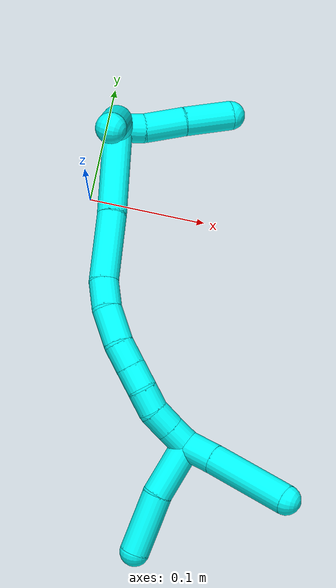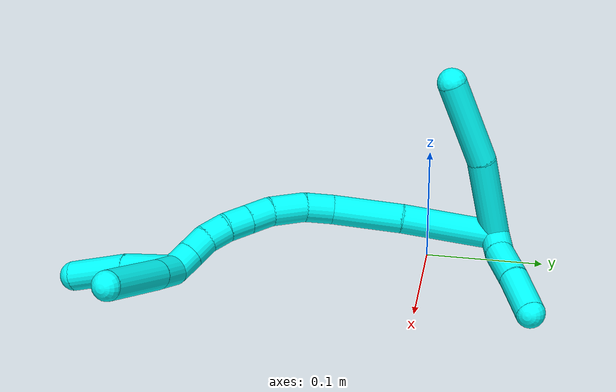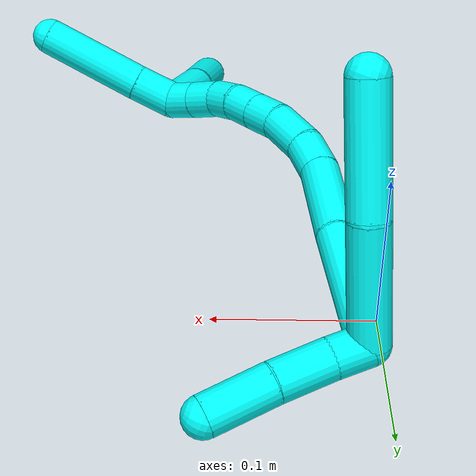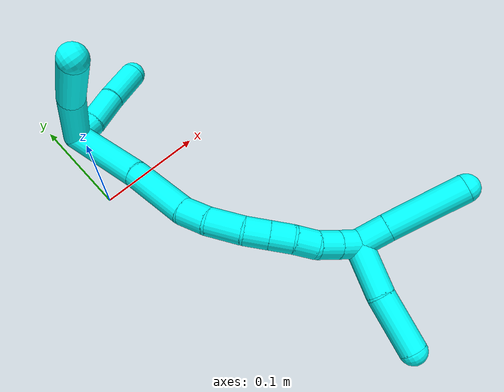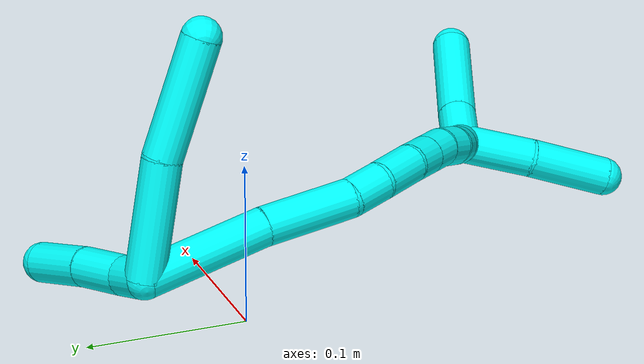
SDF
<sdf version="1.7">
 <world name="default">
  <model name="3">
   <static>0</static>
   <link name="3">
    <collision name="collision-cylinder-e_1_2_8">
     <pose>-0.027451 -0.021248 0.013483 1.00536 -0.82881 -0.474568</pose>
     <geometry><cylinder><radius>0.0125</radius><length>0.07448</length></cylinder></geometry>
     <surface>
      <friction><ode><mu>1.16</mu><mu2>1.16</mu2><slip1>0</slip1><slip2>0</slip2></ode></friction>
      <contact><ode><kp>1e+06</kp><kd>1</kd><max_vel>0</max_vel><min_depth>0.001</min_depth></ode></contact>
     </surface>
    </collision>
    <visual name="visual-cylinder-e_1_2_8">
     <pose>-0.027451 -0.021248 0.013483 1.00536 -0.82881 -0.474568</pose>
     <geometry><cylinder><radius>0.0125</radius><length>0.07448</length></cylinder></geometry>
     <material><ambient>0.003922 1 0.996078 1</ambient></material>
    </visual>
    <collision name="collision-cylinder-e_2_8_6">
     <pose>-0.078257 -0.068741 0.040805 1.08555 -0.666884 -0.411946</pose>
     <geometry><cylinder><radius>0.0125</radius><length>0.07552</length></cylinder></geometry>
     <surface>
      <friction><ode><mu>1.16</mu><mu2>1.16</mu2><slip1>0</slip1><slip2>0</slip2></ode></friction>
      <contact><ode><kp>1e+06</kp><kd>1</kd><max_vel>0</max_vel><min_depth>0.001</min_depth></ode></contact>
     </surface>
    </collision>
    <visual name="visual-cylinder-e_2_8_6">
     <pose>-0.078257 -0.068741 0.040805 1.08555 -0.666884 -0.411946</pose>
     <geometry><cylinder><radius>0.0125</radius><length>0.07552</length></cylinder></geometry>
     <material><ambient>0.003922 1 0.996078 1</ambient></material>
    </visual>
    <collision name="collision-cylinder-e_1_2_9">
     <pose>0.002577 0.006701 0.008575 -0.663346 0.232501 -0.080392</pose>
     <geometry><cylinder><radius>0.0125</radius><length>0.022368</length></cylinder></geometry>
     <surface>
      <friction><ode><mu>1.16</mu><mu2>1.16</mu2><slip1>0</slip1><slip2>0</slip2></ode></friction>
      <contact><ode><kp>1e+06</kp><kd>1</kd><max_vel>0</max_vel><min_depth>0.001</min_depth></ode></contact>
     </surface>
    </collision>
    <visual name="visual-cylinder-e_1_2_9">
     <pose>0.002577 0.006701 0.008575 -0.663346 0.232501 -0.080392</pose>
     <geometry><cylinder><radius>0.0125</radius><length>0.022368</length></cylinder></geometry>
     <material><ambient>0.003922 1 0.996078 1</ambient></material>
    </visual>
    <collision name="collision-cylinder-e_2_9_10">
     <pose>0.006148 0.025506 0.030155 -0.749518 0.05591 -0.021997</pose>
     <geometry><cylinder><radius>0.0125</radius><length>0.035585</length></cylinder></geometry>
     <surface>
      <friction><ode><mu>1.16</mu><mu2>1.16</mu2><slip1>0</slip1><slip2>0</slip2></ode></friction>
      <contact><ode><kp>1e+06</kp><kd>1</kd><max_vel>0</max_vel><min_depth>0.001</min_depth></ode></contact>
     </surface>
    </collision>
    <visual name="visual-cylinder-e_2_9_10">
     <pose>0.006148 0.025506 0.030155 -0.749518 0.05591 -0.021997</pose>
     <geometry><cylinder><radius>0.0125</radius><length>0.035585</length></cylinder></geometry>
     <material><ambient>0.003922 1 0.996078 1</ambient></material>
    </visual>
    <collision name="collision-cylinder-e_3_10_5">
     <pose>0.010002 0.052302 0.05792 -0.783101 0.136435 -0.056402</pose>
     <geometry><cylinder><radius>0.0125</radius><length>0.042046</length></cylinder></geometry>
     <surface>
      <friction><ode><mu>1.16</mu><mu2>1.16</mu2><slip1>0</slip1><slip2>0</slip2></ode></friction>
      <contact><ode><kp>1e+06</kp><kd>1</kd><max_vel>0</max_vel><min_depth>0.001</min_depth></ode></contact>
     </surface>
    </collision>
    <visual name="visual-cylinder-e_3_10_5">
     <pose>0.010002 0.052302 0.05792 -0.783101 0.136435 -0.056402</pose>
     <geometry><cylinder><radius>0.0125</radius><length>0.042046</length></cylinder></geometry>
     <material><ambient>0.003922 1 0.996078 1</ambient></material>
    </visual>
    <collision name="collision-cylinder-e_1_2_11">
     <pose>0.01365 -0.03525 0.01575 1.1506 0.339827 0.221603</pose>
     <geometry><cylinder><radius>0.0125</radius><length>0.081901</length></cylinder></geometry>
     <surface>
      <friction><ode><mu>1.16</mu><mu2>1.16</mu2><slip1>0</slip1><slip2>0</slip2></ode></friction>
      <contact><ode><kp>1e+06</kp><kd>1</kd><max_vel>0</max_vel><min_depth>0.001</min_depth></ode></contact>
     </surface>
    </collision>
    <visual name="visual-cylinder-e_1_2_11">
     <pose>0.01365 -0.03525 0.01575 1.1506 0.339827 0.221603</pose>
     <geometry><cylinder><radius>0.0125</radius><length>0.081901</length></cylinder></geometry>
     <material><ambient>0.003922 1 0.996078 1</ambient></material>
    </visual>
    <collision name="collision-cylinder-e_2_11_12">
     <pose>0.039197 -0.096101 0.041088 1.21245 0.410497 0.286689</pose>
     <geometry><cylinder><radius>0.0125</radius><length>0.059629</length></cylinder></geometry>
     <surface>
      <friction><ode><mu>1.16</mu><mu2>1.16</mu2><slip1>0</slip1><slip2>0</slip2></ode></friction>
      <contact><ode><kp>1e+06</kp><kd>1</kd><max_vel>0</max_vel><min_depth>0.001</min_depth></ode></contact>
     </surface>
    </collision>
    <visual name="visual-cylinder-e_2_11_12">
     <pose>0.039197 -0.096101 0.041088 1.21245 0.410497 0.286689</pose>
     <geometry><cylinder><radius>0.0125</radius><length>0.059629</length></cylinder></geometry>
     <material><ambient>0.003922 1 0.996078 1</ambient></material>
    </visual>
    <collision name="collision-cylinder-e_3_12_13">
     <pose>0.055415 -0.131274 0.057324 0.963729 0.35494 0.187054</pose>
     <geometry><cylinder><radius>0.0125</radius><length>0.024858</length></cylinder></geometry>
     <surface>
      <friction><ode><mu>1.16</mu><mu2>1.16</mu2><slip1>0</slip1><slip2>0</slip2></ode></friction>
      <contact><ode><kp>1e+06</kp><kd>1</kd><max_vel>0</max_vel><min_depth>0.001</min_depth></ode></contact>
     </surface>
    </collision>
    <visual name="visual-cylinder-e_3_12_13">
     <pose>0.055415 -0.131274 0.057324 0.963729 0.35494 0.187054</pose>
     <geometry><cylinder><radius>0.0125</radius><length>0.024858</length></cylinder></geometry>
     <material><ambient>0.003922 1 0.996078 1</ambient></material>
    </visual>
    <collision name="collision-cylinder-e_4_13_14">
     <pose>0.066737 -0.150214 0.074199 0.741634 0.467593 0.184662</pose>
     <geometry><cylinder><radius>0.0125</radius><length>0.031072</length></cylinder></geometry>
     <surface>
      <friction><ode><mu>1.16</mu><mu2>1.16</mu2><slip1>0</slip1><slip2>0</slip2></ode></friction>
      <contact><ode><kp>1e+06</kp><kd>1</kd><max_vel>0</max_vel><min_depth>0.001</min_depth></ode></contact>
     </surface>
    </collision>
    <visual name="visual-cylinder-e_4_13_14">
     <pose>0.066737 -0.150214 0.074199 0.741634 0.467593 0.184662</pose>
     <geometry><cylinder><radius>0.0125</radius><length>0.031072</length></cylinder></geometry>
     <material><ambient>0.003922 1 0.996078 1</ambient></material>
    </visual>
    <collision name="collision-cylinder-e_5_14_15">
     <pose>0.079651 -0.164135 0.092177 0.530995 0.581647 0.162417</pose>
     <geometry><cylinder><radius>0.0125</radius><length>0.021519</length></cylinder></geometry>
     <surface>
      <friction><ode><mu>1.16</mu><mu2>1.16</mu2><slip1>0</slip1><slip2>0</slip2></ode></friction>
      <contact><ode><kp>1e+06</kp><kd>1</kd><max_vel>0</max_vel><min_depth>0.001</min_depth></ode></contact>
     </surface>
    </collision>
    <visual name="visual-cylinder-e_5_14_15">
     <pose>0.079651 -0.164135 0.092177 0.530995 0.581647 0.162417</pose>
     <geometry><cylinder><radius>0.0125</radius><length>0.021519</length></cylinder></geometry>
     <material><ambient>0.003922 1 0.996078 1</ambient></material>
    </visual>
    <collision name="collision-cylinder-e_6_15_16">
     <pose>0.091221 -0.173046 0.107349 0.531155 0.581659 0.162471</pose>
     <geometry><cylinder><radius>0.0125</radius><length>0.020598</length></cylinder></geometry>
     <surface>
      <friction><ode><mu>1.16</mu><mu2>1.16</mu2><slip1>0</slip1><slip2>0</slip2></ode></friction>
      <contact><ode><kp>1e+06</kp><kd>1</kd><max_vel>0</max_vel><min_depth>0.001</min_depth></ode></contact>
     </surface>
    </collision>
    <visual name="visual-cylinder-e_6_15_16">
     <pose>0.091221 -0.173046 0.107349 0.531155 0.581659 0.162471</pose>
     <geometry><cylinder><radius>0.0125</radius><length>0.020598</length></cylinder></geometry>
     <material><ambient>0.003922 1 0.996078 1</ambient></material>
    </visual>
    <collision name="collision-cylinder-e_7_16_17">
     <pose>0.103774 -0.180617 0.121296 0.457243 0.758625 0.184979</pose>
     <geometry><cylinder><radius>0.0125</radius><length>0.020045</length></cylinder></geometry>
     <surface>
      <friction><ode><mu>1.16</mu><mu2>1.16</mu2><slip1>0</slip1><slip2>0</slip2></ode></friction>
      <contact><ode><kp>1e+06</kp><kd>1</kd><max_vel>0</max_vel><min_depth>0.001</min_depth></ode></contact>
     </surface>
    </collision>
    <visual name="visual-cylinder-e_7_16_17">
     <pose>0.103774 -0.180617 0.121296 0.457243 0.758625 0.184979</pose>
     <geometry><cylinder><radius>0.0125</radius><length>0.020045</length></cylinder></geometry>
     <material><ambient>0.003922 1 0.996078 1</ambient></material>
    </visual>
    <collision name="collision-cylinder-e_8_17_18">
     <pose>0.117413 -0.184303 0.135401 0.062529 0.726235 0.023765</pose>
     <geometry><cylinder><radius>0.0125</radius><length>0.020311</length></cylinder></geometry>
     <surface>
      <friction><ode><mu>1.16</mu><mu2>1.16</mu2><slip1>0</slip1><slip2>0</slip2></ode></friction>
      <contact><ode><kp>1e+06</kp><kd>1</kd><max_vel>0</max_vel><min_depth>0.001</min_depth></ode></contact>
     </surface>
    </collision>
    <visual name="visual-cylinder-e_8_17_18">
     <pose>0.117413 -0.184303 0.135401 0.062529 0.726235 0.023765</pose>
     <geometry><cylinder><radius>0.0125</radius><length>0.020311</length></cylinder></geometry>
     <material><ambient>0.003922 1 0.996078 1</ambient></material>
    </visual>
    <collision name="collision-cylinder-e_9_18_1">
     <pose>0.130444 -0.185182 0.150788 0.05181 0.677201 0.018249</pose>
     <geometry><cylinder><radius>0.0125</radius><length>0.020066</length></cylinder></geometry>
     <surface>
      <friction><ode><mu>1.16</mu><mu2>1.16</mu2><slip1>0</slip1><slip2>0</slip2></ode></friction>
      <contact><ode><kp>1e+06</kp><kd>1</kd><max_vel>0</max_vel><min_depth>0.001</min_depth></ode></contact>
     </surface>
    </collision>
    <visual name="visual-cylinder-e_9_18_1">
     <pose>0.130444 -0.185182 0.150788 0.05181 0.677201 0.018249</pose>
     <geometry><cylinder><radius>0.0125</radius><length>0.020066</length></cylinder></geometry>
     <material><ambient>0.003922 1 0.996078 1</ambient></material>
    </visual>
    <collision name="collision-cylinder-e_1_1_19">
     <pose>0.150978 -0.203824 0.153953 1.82012 0.648019 0.815692</pose>
     <geometry><cylinder><radius>0.0125</radius><length>0.047207</length></cylinder></geometry>
     <surface>
      <friction><ode><mu>1.16</mu><mu2>1.16</mu2><slip1>0</slip1><slip2>0</slip2></ode></friction>
      <contact><ode><kp>1e+06</kp><kd>1</kd><max_vel>0</max_vel><min_depth>0.001</min_depth></ode></contact>
     </surface>
    </collision>
    <visual name="visual-cylinder-e_1_1_19">
     <pose>0.150978 -0.203824 0.153953 1.82012 0.648019 0.815692</pose>
     <geometry><cylinder><radius>0.0125</radius><length>0.047207</length></cylinder></geometry>
     <material><ambient>0.003922 1 0.996078 1</ambient></material>
    </visual>
    <collision name="collision-cylinder-e_2_19_4">
     <pose>0.183946 -0.240573 0.14741 1.67307 0.788387 0.863663</pose>
     <geometry><cylinder><radius>0.0125</radius><length>0.052793</length></cylinder></geometry>
     <surface>
      <friction><ode><mu>1.16</mu><mu2>1.16</mu2><slip1>0</slip1><slip2>0</slip2></ode></friction>
      <contact><ode><kp>1e+06</kp><kd>1</kd><max_vel>0</max_vel><min_depth>0.001</min_depth></ode></contact>
     </surface>
    </collision>
    <visual name="visual-cylinder-e_2_19_4">
     <pose>0.183946 -0.240573 0.14741 1.67307 0.788387 0.863663</pose>
     <geometry><cylinder><radius>0.0125</radius><length>0.052793</length></cylinder></geometry>
     <material><ambient>0.003922 1 0.996078 1</ambient></material>
    </visual>
    <collision name="collision-cylinder-e_1_1_20">
     <pose>0.136662 -0.187318 0.172568 0.123294 -0.004856 -0.0003</pose>
     <geometry><cylinder><radius>0.0125</radius><length>0.028157</length></cylinder></geometry>
     <surface>
      <friction><ode><mu>1.16</mu><mu2>1.16</mu2><slip1>0</slip1><slip2>0</slip2></ode></friction>
      <contact><ode><kp>1e+06</kp><kd>1</kd><max_vel>0</max_vel><min_depth>0.001</min_depth></ode></contact>
     </surface>
    </collision>
    <visual name="visual-cylinder-e_1_1_20">
     <pose>0.136662 -0.187318 0.172568 0.123294 -0.004856 -0.0003</pose>
     <geometry><cylinder><radius>0.0125</radius><length>0.028157</length></cylinder></geometry>
     <material><ambient>0.003922 1 0.996078 1</ambient></material>
    </visual>
    <collision name="collision-cylinder-e_2_20_3">
     <pose>0.136566 -0.194843 0.22199 0.161978 -0.000768 -6.2e-05</pose>
     <geometry><cylinder><radius>0.0125</radius><length>0.071843</length></cylinder></geometry>
     <surface>
      <friction><ode><mu>1.16</mu><mu2>1.16</mu2><slip1>0</slip1><slip2>0</slip2></ode></friction>
      <contact><ode><kp>1e+06</kp><kd>1</kd><max_vel>0</max_vel><min_depth>0.001</min_depth></ode></contact>
     </surface>
    </collision>
    <visual name="visual-cylinder-e_2_20_3">
     <pose>0.136566 -0.194843 0.22199 0.161978 -0.000768 -6.2e-05</pose>
     <geometry><cylinder><radius>0.0125</radius><length>0.071843</length></cylinder></geometry>
     <material><ambient>0.003922 1 0.996078 1</ambient></material>
    </visual>
    <collision name="collision-sphere-3">
     <pose>0.136539 -0.200636 0.257442 0 -0 0</pose>
     <geometry><sphere><radius>0.0125</radius></sphere></geometry>
     <surface>
      <friction><ode><mu>1.16</mu><mu2>1.16</mu2><slip1>0</slip1><slip2>0</slip2></ode></friction>
      <contact><ode><kp>1e+06</kp><kd>1</kd><max_vel>0</max_vel><min_depth>0.001</min_depth></ode></contact>
     </surface>
    </collision>
    <visual name="visual-sphere-3">
     <pose>0.136539 -0.200636 0.257442 0 -0 0</pose>
     <geometry><sphere><radius>0.0125</radius></sphere></geometry>
     <material><ambient>0.003922 1 0.996078 1</ambient></material>
    </visual>
    <collision name="collision-sphere-20">
     <pose>0.136594 -0.18905 0.186539 0 -0 0</pose>
     <geometry><sphere><radius>0.0125</radius></sphere></geometry>
     <surface>
      <friction><ode><mu>1.16</mu><mu2>1.16</mu2><slip1>0</slip1><slip2>0</slip2></ode></friction>
      <contact><ode><kp>1e+06</kp><kd>1</kd><max_vel>0</max_vel><min_depth>0.001</min_depth></ode></contact>
     </surface>
    </collision>
    <visual name="visual-sphere-20">
     <pose>0.136594 -0.18905 0.186539 0 -0 0</pose>
     <geometry><sphere><radius>0.0125</radius></sphere></geometry>
     <material><ambient>0.003922 1 0.996078 1</ambient></material>
    </visual>
    <collision name="collision-sphere-4">
     <pose>0.202667 -0.259084 0.14551 0 -0 0</pose>
     <geometry><sphere><radius>0.0125</radius></sphere></geometry>
     <surface>
      <friction><ode><mu>1.16</mu><mu2>1.16</mu2><slip1>0</slip1><slip2>0</slip2></ode></friction>
      <contact><ode><kp>1e+06</kp><kd>1</kd><max_vel>0</max_vel><min_depth>0.001</min_depth></ode></contact>
     </surface>
    </collision>
    <visual name="visual-sphere-4">
     <pose>0.202667 -0.259084 0.14551 0 -0 0</pose>
     <geometry><sphere><radius>0.0125</radius></sphere></geometry>
     <material><ambient>0.003922 1 0.996078 1</ambient></material>
    </visual>
    <collision name="collision-sphere-5">
     <pose>0.012861 0.066996 0.072682 0 -0 0</pose>
     <geometry><sphere><radius>0.0125</radius></sphere></geometry>
     <surface>
      <friction><ode><mu>1.16</mu><mu2>1.16</mu2><slip1>0</slip1><slip2>0</slip2></ode></friction>
      <contact><ode><kp>1e+06</kp><kd>1</kd><max_vel>0</max_vel><min_depth>0.001</min_depth></ode></contact>
     </surface>
    </collision>
    <visual name="visual-sphere-5">
     <pose>0.012861 0.066996 0.072682 0 -0 0</pose>
     <geometry><sphere><radius>0.0125</radius></sphere></geometry>
     <material><ambient>0.003922 1 0.996078 1</ambient></material>
    </visual>
    <collision name="collision-sphere-10">
     <pose>0.007143 0.037609 0.043159 0 -0 0</pose>
     <geometry><sphere><radius>0.0125</radius></sphere></geometry>
     <surface>
      <friction><ode><mu>1.16</mu><mu2>1.16</mu2><slip1>0</slip1><slip2>0</slip2></ode></friction>
      <contact><ode><kp>1e+06</kp><kd>1</kd><max_vel>0</max_vel><min_depth>0.001</min_depth></ode></contact>
     </surface>
    </collision>
    <visual name="visual-sphere-10">
     <pose>0.007143 0.037609 0.043159 0 -0 0</pose>
     <geometry><sphere><radius>0.0125</radius></sphere></geometry>
     <material><ambient>0.003922 1 0.996078 1</ambient></material>
    </visual>
    <collision name="collision-sphere-6">
     <pose>-0.101613 -0.094986 0.054644 0 -0 0</pose>
     <geometry><sphere><radius>0.0125</radius></sphere></geometry>
     <surface>
      <friction><ode><mu>1.16</mu><mu2>1.16</mu2><slip1>0</slip1><slip2>0</slip2></ode></friction>
      <contact><ode><kp>1e+06</kp><kd>1</kd><max_vel>0</max_vel><min_depth>0.001</min_depth></ode></contact>
     </surface>
    </collision>
    <visual name="visual-sphere-6">
     <pose>-0.101613 -0.094986 0.054644 0 -0 0</pose>
     <geometry><sphere><radius>0.0125</radius></sphere></geometry>
     <material><ambient>0.003922 1 0.996078 1</ambient></material>
    </visual>
    <collision name="collision-sphere-9">
     <pose>0.005154 0.013403 0.017151 0 -0 0</pose>
     <geometry><sphere><radius>0.0125</radius></sphere></geometry>
     <surface>
      <friction><ode><mu>1.16</mu><mu2>1.16</mu2><slip1>0</slip1><slip2>0</slip2></ode></friction>
      <contact><ode><kp>1e+06</kp><kd>1</kd><max_vel>0</max_vel><min_depth>0.001</min_depth></ode></contact>
     </surface>
    </collision>
    <visual name="visual-sphere-9">
     <pose>0.005154 0.013403 0.017151 0 -0 0</pose>
     <geometry><sphere><radius>0.0125</radius></sphere></geometry>
     <material><ambient>0.003922 1 0.996078 1</ambient></material>
    </visual>
    <collision name="collision-sphere-2">
     <geometry><sphere><radius>0.0125</radius></sphere></geometry>
     <surface>
      <friction><ode><mu>1.16</mu><mu2>1.16</mu2><slip1>0</slip1><slip2>0</slip2></ode></friction>
      <contact><ode><kp>1e+06</kp><kd>1</kd><max_vel>0</max_vel><min_depth>0.001</min_depth></ode></contact>
     </surface>
    </collision>
    <visual name="visual-sphere-2">
     <geometry><sphere><radius>0.0125</radius></sphere></geometry>
     <material><ambient>0.003922 1 0.996078 1</ambient></material>
    </visual>
    <collision name="collision-sphere-19">
     <pose>0.165225 -0.222061 0.14931 0 -0 0</pose>
     <geometry><sphere><radius>0.0125</radius></sphere></geometry>
     <surface>
      <friction><ode><mu>1.16</mu><mu2>1.16</mu2><slip1>0</slip1><slip2>0</slip2></ode></friction>
      <contact><ode><kp>1e+06</kp><kd>1</kd><max_vel>0</max_vel><min_depth>0.001</min_depth></ode></contact>
     </surface>
    </collision>
    <visual name="visual-sphere-19">
     <pose>0.165225 -0.222061 0.14931 0 -0 0</pose>
     <geometry><sphere><radius>0.0125</radius></sphere></geometry>
     <material><ambient>0.003922 1 0.996078 1</ambient></material>
    </visual>
    <collision name="collision-sphere-8">
     <pose>-0.054901 -0.042496 0.026966 0 -0 0</pose>
     <geometry><sphere><radius>0.0125</radius></sphere></geometry>
     <surface>
      <friction><ode><mu>1.16</mu><mu2>1.16</mu2><slip1>0</slip1><slip2>0</slip2></ode></friction>
      <contact><ode><kp>1e+06</kp><kd>1</kd><max_vel>0</max_vel><min_depth>0.001</min_depth></ode></contact>
     </surface>
    </collision>
    <visual name="visual-sphere-8">
     <pose>-0.054901 -0.042496 0.026966 0 -0 0</pose>
     <geometry><sphere><radius>0.0125</radius></sphere></geometry>
     <material><ambient>0.003922 1 0.996078 1</ambient></material>
    </visual>
    <collision name="collision-sphere-11">
     <pose>0.0273 -0.0705 0.0315 0 -0 0</pose>
     <geometry><sphere><radius>0.0125</radius></sphere></geometry>
     <surface>
      <friction><ode><mu>1.16</mu><mu2>1.16</mu2><slip1>0</slip1><slip2>0</slip2></ode></friction>
      <contact><ode><kp>1e+06</kp><kd>1</kd><max_vel>0</max_vel><min_depth>0.001</min_depth></ode></contact>
     </surface>
    </collision>
    <visual name="visual-sphere-11">
     <pose>0.0273 -0.0705 0.0315 0 -0 0</pose>
     <geometry><sphere><radius>0.0125</radius></sphere></geometry>
     <material><ambient>0.003922 1 0.996078 1</ambient></material>
    </visual>
    <collision name="collision-sphere-12">
     <pose>0.051095 -0.121702 0.050676 0 -0 0</pose>
     <geometry><sphere><radius>0.0125</radius></sphere></geometry>
     <surface>
      <friction><ode><mu>1.16</mu><mu2>1.16</mu2><slip1>0</slip1><slip2>0</slip2></ode></friction>
      <contact><ode><kp>1e+06</kp><kd>1</kd><max_vel>0</max_vel><min_depth>0.001</min_depth></ode></contact>
     </surface>
    </collision>
    <visual name="visual-sphere-12">
     <pose>0.051095 -0.121702 0.050676 0 -0 0</pose>
     <geometry><sphere><radius>0.0125</radius></sphere></geometry>
     <material><ambient>0.003922 1 0.996078 1</ambient></material>
    </visual>
    <collision name="collision-sphere-13">
     <pose>0.059734 -0.140846 0.063972 0 -0 0</pose>
     <geometry><sphere><radius>0.0125</radius></sphere></geometry>
     <surface>
      <friction><ode><mu>1.16</mu><mu2>1.16</mu2><slip1>0</slip1><slip2>0</slip2></ode></friction>
      <contact><ode><kp>1e+06</kp><kd>1</kd><max_vel>0</max_vel><min_depth>0.001</min_depth></ode></contact>
     </surface>
    </collision>
    <visual name="visual-sphere-13">
     <pose>0.059734 -0.140846 0.063972 0 -0 0</pose>
     <geometry><sphere><radius>0.0125</radius></sphere></geometry>
     <material><ambient>0.003922 1 0.996078 1</ambient></material>
    </visual>
    <collision name="collision-sphere-14">
     <pose>0.07374 -0.159582 0.084425 0 -0 0</pose>
     <geometry><sphere><radius>0.0125</radius></sphere></geometry>
     <surface>
      <friction><ode><mu>1.16</mu><mu2>1.16</mu2><slip1>0</slip1><slip2>0</slip2></ode></friction>
      <contact><ode><kp>1e+06</kp><kd>1</kd><max_vel>0</max_vel><min_depth>0.001</min_depth></ode></contact>
     </surface>
    </collision>
    <visual name="visual-sphere-14">
     <pose>0.07374 -0.159582 0.084425 0 -0 0</pose>
     <geometry><sphere><radius>0.0125</radius></sphere></geometry>
     <material><ambient>0.003922 1 0.996078 1</ambient></material>
    </visual>
    <collision name="collision-sphere-15">
     <pose>0.085562 -0.168687 0.099929 0 -0 0</pose>
     <geometry><sphere><radius>0.0125</radius></sphere></geometry>
     <surface>
      <friction><ode><mu>1.16</mu><mu2>1.16</mu2><slip1>0</slip1><slip2>0</slip2></ode></friction>
      <contact><ode><kp>1e+06</kp><kd>1</kd><max_vel>0</max_vel><min_depth>0.001</min_depth></ode></contact>
     </surface>
    </collision>
    <visual name="visual-sphere-15">
     <pose>0.085562 -0.168687 0.099929 0 -0 0</pose>
     <geometry><sphere><radius>0.0125</radius></sphere></geometry>
     <material><ambient>0.003922 1 0.996078 1</ambient></material>
    </visual>
    <collision name="collision-sphere-16">
     <pose>0.096879 -0.177405 0.114769 0 -0 0</pose>
     <geometry><sphere><radius>0.0125</radius></sphere></geometry>
     <surface>
      <friction><ode><mu>1.16</mu><mu2>1.16</mu2><slip1>0</slip1><slip2>0</slip2></ode></friction>
      <contact><ode><kp>1e+06</kp><kd>1</kd><max_vel>0</max_vel><min_depth>0.001</min_depth></ode></contact>
     </surface>
    </collision>
    <visual name="visual-sphere-16">
     <pose>0.096879 -0.177405 0.114769 0 -0 0</pose>
     <geometry><sphere><radius>0.0125</radius></sphere></geometry>
     <material><ambient>0.003922 1 0.996078 1</ambient></material>
    </visual>
    <collision name="collision-sphere-17">
     <pose>0.110669 -0.183828 0.127823 0 -0 0</pose>
     <geometry><sphere><radius>0.0125</radius></sphere></geometry>
     <surface>
      <friction><ode><mu>1.16</mu><mu2>1.16</mu2><slip1>0</slip1><slip2>0</slip2></ode></friction>
      <contact><ode><kp>1e+06</kp><kd>1</kd><max_vel>0</max_vel><min_depth>0.001</min_depth></ode></contact>
     </surface>
    </collision>
    <visual name="visual-sphere-17">
     <pose>0.110669 -0.183828 0.127823 0 -0 0</pose>
     <geometry><sphere><radius>0.0125</radius></sphere></geometry>
     <material><ambient>0.003922 1 0.996078 1</ambient></material>
    </visual>
    <collision name="collision-sphere-18">
     <pose>0.124157 -0.184777 0.14298 0 -0 0</pose>
     <geometry><sphere><radius>0.0125</radius></sphere></geometry>
     <surface>
      <friction><ode><mu>1.16</mu><mu2>1.16</mu2><slip1>0</slip1><slip2>0</slip2></ode></friction>
      <contact><ode><kp>1e+06</kp><kd>1</kd><max_vel>0</max_vel><min_depth>0.001</min_depth></ode></contact>
     </surface>
    </collision>
    <visual name="visual-sphere-18">
     <pose>0.124157 -0.184777 0.14298 0 -0 0</pose>
     <geometry><sphere><radius>0.0125</radius></sphere></geometry>
     <material><ambient>0.003922 1 0.996078 1</ambient></material>
    </visual>
    <collision name="collision-sphere-1">
     <pose>0.13673 -0.185587 0.158596 0 -0 0</pose>
     <geometry><sphere><radius>0.0125</radius></sphere></geometry>
     <surface>
      <friction><ode><mu>1.16</mu><mu2>1.16</mu2><slip1>0</slip1><slip2>0</slip2></ode></friction>
      <contact><ode><kp>1e+06</kp><kd>1</kd><max_vel>0</max_vel><min_depth>0.001</min_depth></ode></contact>
     </surface>
    </collision>
    <visual name="visual-sphere-1">
     <pose>0.13673 -0.185587 0.158596 0 -0 0</pose>
     <geometry><sphere><radius>0.0125</radius></sphere></geometry>
     <material><ambient>0.003922 1 0.996078 1</ambient></material>
    </visual>
    <inertial>
     <pose>0.054429 -0.106449 0.084688 0 -0 0</pose>
     <mass>0.75</mass>
     <inertia>
      <ixx>0.000203</ixx>
      <ixy>0</ixy>
      <ixz>0</ixz>
      <iyy>0.000136</iyy>
      <iyz>0</iyz>
      <izz>0.000158</izz>
     </inertia>
    </inertial>
   </link>
   <pose>0.012613 0.059005 0.032162 -1.01116 1.02932 -1.27669</pose>
  </model>
 </world>
</sdf>
